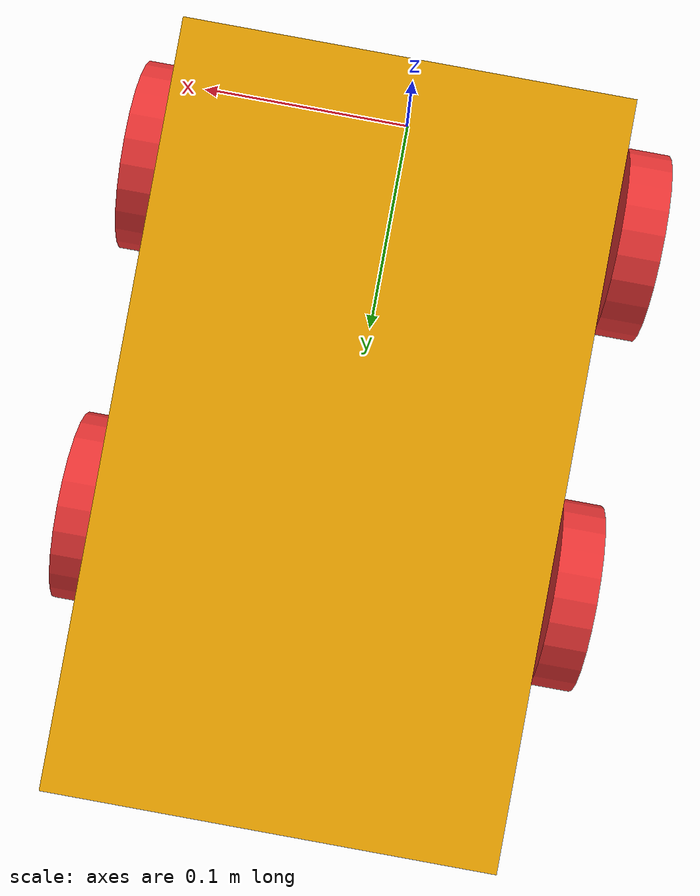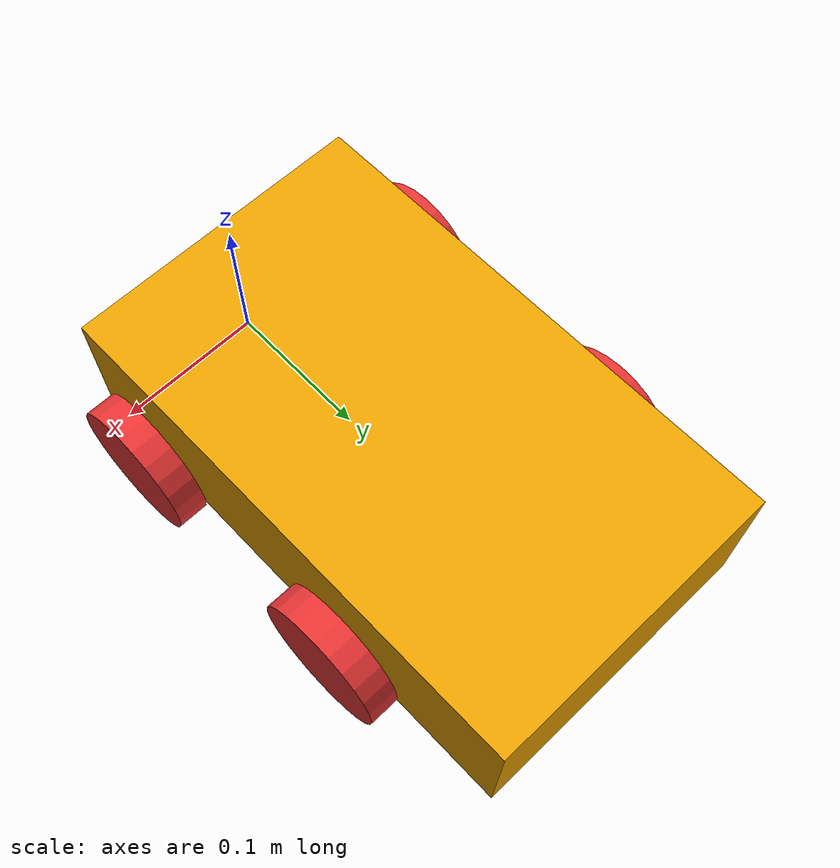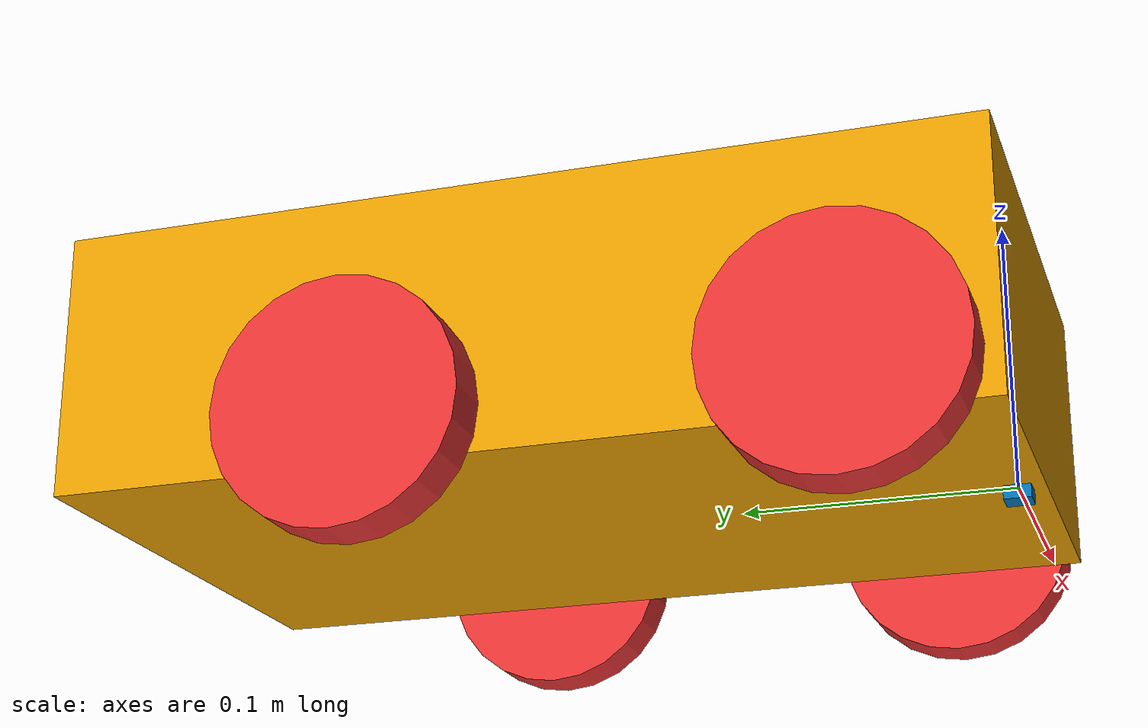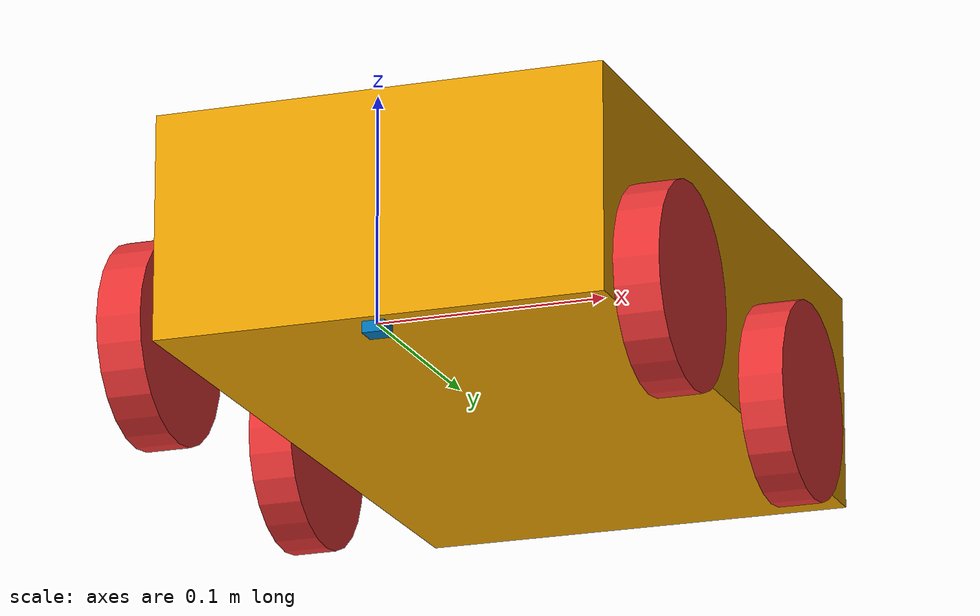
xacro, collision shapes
<?xml version="1.0"?>
<robot xmlns:xacro="http://www.ros.org/wiki/xacro" name="fs">

<!--    *Constants*    -->

<!-- These 2 values should always be modified in parallel with the ones in scripts/front_steer_akermann.py -->
<xacro:property name="axle_track" value="0.227" />
<xacro:property name="wheel_base" value="0.17" />

<xacro:property name="Chasis_mass" value="50" />
<xacro:property name="Wheel_mass" value="10" />
<xacro:property name="M_PI" value="3.1415926535897931" />

<!-- Camara focal length, in pixels. (This assumes square pixels) -->
<xacro:property name="Camera_pixel_focal_length" value="400" />
<xacro:property name="Camera_image_width" value="640" />
<xacro:property name="Camera_image_height" value="360" />
<xacro:property name="Camera_cx" value="320" />
<xacro:property name="Camera_cy" value="167" />
        <!--In degrees measured from vertical -->
<xacro:property name="Camera_angle" value="25" />
<!--Camera near and far cutoff -->
<xacro:property name="Camera_near_cut" value="0.05" />
<xacro:property name="Camera_far_cut" value="25" />

<xacro:property name="wheel_MU1" value="200.0" />
<xacro:property name="wheel_MU2" value="1.0" />

<!--    *Colours*   -->

<material name="grey">
    <color rgba="0.2 0.2 0.3 1"/>
</material>

<material name="blue">
    <color rgba="0 0 0.8 1"/>
</material>

<material name="white">
    <color rgba="1 1 1 1"/>
</material>

<material name="black">
    <color rgba="0 0 0 1"/>
</material>

<material name="green">
    <color rgba="0.0 0.8 0.0 1.0"/>
</material>

<material name="red">
    <color rgba="0.9 0.2 0.2 1"/>
</material>

<!--    Base link (chassis) since Gazebo 9 this has no mass of its own, see dummy link -->

  <link name="base_link">
    <collision>
        <origin rpy="0 0 0" xyz="0.003 0.16 0.05"/>
        <geometry>
            <box size="0.2 0.34 0.1"/>
        </geometry>
    </collision>
  </link>

<!-- Dummy node, inertia for base link (chasis+batterypack+Motors) -->

<joint name="dummy_joint" type="fixed">
  <axis xyz="0 0 0" />
  <origin xyz="0 0 0" rpy="0 0 0"/>
  <parent link="base_link"/>
  <child link="dummy_link"/>
</joint>

<link name="dummy_link">
    <inertial>
      <origin rpy="0 0 0" xyz="0.003 0.16 0.05"/>
      <mass value="${Chasis_mass}"/>
      <inertia ixx="${Chasis_mass*0.01}" ixy="0.0" ixz="0.0" iyy="${Chasis_mass*4.16e-3}" iyz="0.0" izz="${Chasis_mass*0.013}"/>
    </inertial>
</link>

<!--    *Rear Left Wheel*   -->

  <link name="rear_left_wheel">
    <visual>
      <origin rpy="0 1.57 0" xyz="-0.01 0 0"/>
        <geometry>
          <cylinder length="0.02" radius="0.045"/>
        </geometry>
        <material name="red"/>
      </visual>
      <collision>
        <origin rpy="0 1.57 0" xyz="-0.01 0 0"/>
        <geometry>
            <cylinder length="0.02" radius="0.045"/>
        </geometry>
      </collision>
    <inertial>
      <origin rpy="0 0 0" xyz="-0.01 0 0"/>
      <mass value="${Wheel_mass}"/>
      <inertia ixx="${Wheel_mass*8e-4}" ixy="0.0" ixz="0.0" iyy="${Wheel_mass*4.3e-4}" iyz="0.0" izz="${Wheel_mass*4.3e-4}"/>
    </inertial>
  </link>

  <gazebo reference="rear_left_wheel">
      <mu1 value="${wheel_MU1}"/>
      <mu2 value="${wheel_MU2}"/>
      <kp value="10000000.0" />
      <kd value="1.0" />
  </gazebo>

  <joint name="base_to_left_wheel" type="continuous">
    <limit effort="5000" velocity="10"/>
    <axis rpy="0 0 0" xyz="-1 0 0"/>
    <parent link="base_link"/>
    <child link="rear_left_wheel"/>
    <origin xyz="-0.105 0.040 0.01481" rpy="0 0 0" />
     <dynamics damping="0.3" friction="0.1"/>
  </joint>

  <transmission name="left_back_motor_trans">
    <type>transmission_interface/SimpleTransmission</type>
    <actuator name="left_back_motor_motor">
      <mechanicalReduction>1</mechanicalReduction>
    </actuator>
    <joint name="base_to_left_wheel">
      <hardwareInterface>hardware_interface/VelocityJointInterface</hardwareInterface>
    </joint>
  </transmission>

  <!--    *Rear Right Wheel*   -->

  <link name="rear_right_wheel">
    <visual>
      <origin rpy="0 1.57 0" xyz="0.01 0 0"/>
        <geometry>
          <cylinder length="0.02" radius="0.045"/>
        </geometry>
        <material name="red"/>
      </visual>
      <collision>
        <origin rpy="0 1.57 0" xyz="0.01 0 0"/>
        <geometry>
          <cylinder length="0.02" radius="0.045"/>
        </geometry>
      </collision>
    <inertial>
      <origin rpy="0 0 0" xyz="0.01 0 0"/>
      <mass value="${Wheel_mass}"/>
      <inertia ixx="${Wheel_mass*8e-4}" ixy="0.0" ixz="0.0" iyy="${Wheel_mass*4.3e-4}" iyz="0.0" izz="${Wheel_mass*4.3e-4}"/>
    </inertial>
  </link>

  <gazebo reference="rear_right_wheel">
      <mu1 value="${wheel_MU1}"/>
      <mu2 value="${wheel_MU2}"/>
      <kp value="10000000.0" />
      <kd value="1.0" />
  </gazebo>

  <joint name="base_to_right_wheel" type="continuous">
    <limit effort="5000" velocity="10"/>
    <axis rpy="0 0 0" xyz="-1 0 0"/>
    <parent link="base_link"/>
    <child link="rear_right_wheel"/>
    <origin xyz="0.105 0.040 0.01481" rpy="0 0 0" />
     <dynamics damping="0.3" friction="0.1"/>
  </joint>

  <transmission name="right_back_motor_trans">
    <type>transmission_interface/SimpleTransmission</type>
    <actuator name="right_back_motor_motor">
      <mechanicalReduction>1</mechanicalReduction>
    </actuator>
    <joint name="base_to_right_wheel">
      <hardwareInterface>hardware_interface/VelocityJointInterface</hardwareInterface>
    </joint>
  </transmission>

<!--    Left Steer mechanism   -->

<link name="steer_left">
    <visual>
        <origin rpy="0 0 0" xyz="0 0 0"/>
        <geometry>
            <cylinder length="0.02" radius="0.002"/>
        </geometry>
        <material name="green"/>
    </visual>
    <collision>
        <origin rpy="0 0 0" xyz="0 0 0"/>
        <geometry>
            <cylinder length="0.02" radius="0.002"/>
        </geometry>
    </collision>
  <inertial>
    <mass value="1" />
    <inertia ixx="1e-4" ixy="0.0" ixz="0.0" iyy="1e-4" iyz="0.0" izz="1e-4"/>
</inertial>
</link>

<joint name="base_to_left_front_steer" type="revolute">
    <axis xyz="0 0 1"/>
    <parent link="base_link"/>
    <child link="steer_left"/>
    <origin  xyz="-0.0825 0.210 0.020" rpy="0 0 0" />
    <dynamics damping="0.7" friction="0.7"/>
    <limit effort="5000" lower="${-45*M_PI/180}" upper="${45*M_PI/180}" velocity="${M_PI*2*10}"/>
</joint>

<transmission name="left_front_steer_trans">
  <type>transmission_interface/SimpleTransmission</type>
  <actuator name="left_front_steer_motor">
    <mechanicalReduction>1</mechanicalReduction>
  </actuator>
  <joint name="base_to_left_front_steer">
    <hardwareInterface>hardware_interface/PositionJointInterface</hardwareInterface>
  </joint>
</transmission>

<!--    Right Steer mechanism   -->

<link name="steer_right">
    <visual>
        <origin rpy="0 0 0" xyz="0 0 0"/>
        <geometry>
            <cylinder length="0.02" radius="0.002"/>
        </geometry>
        <material name="green"/>
    </visual>
    <collision>
        <origin rpy="0 0 0" xyz="0 0 0"/>
        <geometry>
            <cylinder length="0.02" radius="0.002"/>
        </geometry>
    </collision>
    <inertial>
      <mass value="1" />
      <inertia ixx="1e-4" ixy="0.0" ixz="0.0" iyy="1e-4" iyz="0.0" izz="1e-4"/>
  </inertial>
</link>

<joint name="base_to_right_front_steer" type="revolute">
    <axis xyz="0 0 1"/>
    <parent link="base_link"/>
    <child link="steer_right"/>
    <origin  xyz="0.0825 0.210 0.020" rpy="0 0 0" />
    <dynamics damping="0.7" friction="0.7"/>
    <limit effort="5000" lower="${-45*M_PI/180}" upper="${45*M_PI/180}" velocity="${M_PI*2*10}"/>
</joint>

<transmission name="right_front_steer_trans">
  <type>transmission_interface/SimpleTransmission</type>
  <actuator name="right_front_steer_motor">
    <mechanicalReduction>1</mechanicalReduction>
  </actuator>
  <joint name="base_to_right_front_steer">
    <hardwareInterface>hardware_interface/PositionJointInterface</hardwareInterface>
  </joint>
</transmission>

<!--  *Front Left Wheel*   -->

<link name="left_front_wheel">
    <visual>
      <origin rpy="0 1.57 0" xyz="-0.01 0 0"/>
      <geometry>
        <cylinder length="0.02" radius="0.045"/>
        </geometry>
        <material name="red"/>
    </visual>
    <collision>
        <origin rpy="0 1.57 0" xyz="-0.01 0 0"/>
        <geometry>
          <cylinder length="0.02" radius="0.045"/>
        </geometry>
      </collision>
  <inertial>
    <origin rpy="0 0 0" xyz="-0.01 0 0"/>
    <mass value="${Wheel_mass}"/>
    <inertia ixx="${Wheel_mass*8e-4}" ixy="0.0" ixz="0.0" iyy="${Wheel_mass*4.3e-4}" iyz="0.0" izz="${Wheel_mass*4.3e-4}"/>
  </inertial>
</link>

<gazebo reference="left_front_wheel">
    <mu1 value="${wheel_MU1}"/>
    <mu2 value="${wheel_MU2}"/>
    <kp value="10000000.0" />
    <kd value="1.0" />
</gazebo>

<joint name="base_to_left_front_wheel" type="continuous">
  <axis  effort="1000.0" rpy="0 0 0" xyz="-1 0 0"/>
  <parent link="steer_left"/>
  <child link="left_front_wheel"/>
  <origin xyz="-0.022 0 -0.006" rpy="0 0 0" />
   <dynamics damping="0.3" friction="0.1"/>
</joint>

<transmission name="left_front_wheel_trans">
  <type>transmission_interface/SimpleTransmission</type>
  <actuator name="left_front_wheel_motor">
    <mechanicalReduction>1</mechanicalReduction>
  </actuator>
  <joint name="base_to_left_front_wheel">
    <hardwareInterface>hardware_interface/EffortJointInterface</hardwareInterface>
  </joint>
</transmission>

<!--  *Front Right Wheel*   -->

<link name="right_front_wheel">
    <visual>
      <origin rpy="0 1.57 0" xyz="0.01 0 0"/>
        <geometry>
          <cylinder length="0.02" radius="0.045"/>
        </geometry>
        <material name="red"/>
    </visual>
    <collision>
        <origin rpy="0 1.57 0" xyz="0.01 0 0"/>
        <geometry>
          <cylinder length="0.02" radius="0.045"/>
        </geometry>
      </collision>
    <inertial>
      <origin rpy="0 0 0" xyz="0.01 0 0"/>
      <mass value="${Wheel_mass}"/>
      <inertia ixx="${Wheel_mass*8e-4}" ixy="0.0" ixz="0.0" iyy="${Wheel_mass*4.3e-4}" iyz="0.0" izz="${Wheel_mass*4.3e-4}"/>
    </inertial>
  </link>

  <gazebo reference="right_front_wheel">
      <mu1 value="${wheel_MU1}"/>
      <mu2 value="${wheel_MU2}"/>
      <kp value="10000000.0" />
      <kd value="1.0" />
  </gazebo>

  <joint name="base_to_right_front_wheel" type="continuous">
    <axis  effort="1000.0" rpy="0 0 0" xyz="-1 0 0"/>
    <parent link="steer_right"/>
    <child link="right_front_wheel"/>
    <origin xyz="0.022 0 -0.006" rpy="0 0 0" />
     <dynamics damping="0.3" friction="0.1"/>
  </joint>

  <transmission name="right_front_wheel_trans">
    <type>transmission_interface/SimpleTransmission</type>
    <actuator name="right_front_wheel_motor">
      <mechanicalReduction>1</mechanicalReduction>
    </actuator>
    <joint name="base_to_right_front_wheel">
      <hardwareInterface>hardware_interface/EffortJointInterface</hardwareInterface>
    </joint>
  </transmission>

<!--    *Sensors*  -->

<!--    Camera 2d  -->

<joint name="camera_joint" type="fixed">
  <origin xyz="0 0.2745 0.125" rpy="0 ${Camera_angle*M_PI/180} ${M_PI/2}" />
  <parent link="base_link"/>
  <child link="camera_link"/>
</joint>

<link name="camera_link">
    <visual>
        <origin rpy="0 0 0" xyz="0 0 0"/>
        <geometry>
            <mesh filename="package://fs_simulator/meshes/prototype_stl/camera_test.stl" scale="0.001 0.001 0.001"/>
        </geometry>
        <material name="blue"/>
    </visual>

  <inertial>
    <mass value="1e-5" />
    <origin xyz="0 0 0" rpy="0 0 0"/>
    <inertia ixx="1e-6" ixy="0" ixz="0" iyy="1e-6" iyz="0" izz="1e-6" />
  </inertial>
</link>

  <gazebo reference="camera_link">
    <material>Gazebo/DarkGrey</material>
    <sensor type="camera" name="camera2d_1">
      <update_rate>10.0</update_rate>
      <camera name="head">
        <horizontal_fov> ${2*atan(0.5*Camera_image_width/Camera_pixel_focal_length)}</horizontal_fov>
        <image>
          <width>${Camera_image_width}</width>
          <height>${Camera_image_height}</height>
          <format>R8G8B8</format>
        </image>
        <clip>
          <near>${Camera_near_cut}</near>
          <far>${Camera_far_cut}</far>
        </clip>
        <noise>
          <type>gaussian</type>
          <!-- Noise is sampled independently per pixel on each frame.
               That pixel's noise value is added to each of its color
               channels, which at that point lie in the range [0,1]. -->
          <mean>0.0</mean>
          <stddev>0.01653004441291028</stddev>
        </noise>
        <lens>
          <type>gnomonical</type>
          <intrinsics>
            <fx> ${Camera_pixel_focal_length} </fx>  <!-- X focal length in pixels -->
            <fy> ${Camera_pixel_focal_length} </fy>  <!-- Y focal length in pixels -->
            <cx> ${Camera_cx} </cx>  <!-- X principal point in pixels -->
            <cy> ${Camera_cy} </cy>  <!-- Y principal point in pixels -->
          </intrinsics>
        </lens>
      </camera>
      <plugin name="camera_controller" filename="libgazebo_ros_camera.so">
        <alwaysOn>true</alwaysOn>
        <updateRate>0.0</updateRate>
        <cameraName>fs/c1</cameraName>
        <imageTopicName>image_raw</imageTopicName>
        <cameraInfoTopicName>camera_info</cameraInfoTopicName>
        <frameName>camera_link</frameName>
        <Cx>${Camera_cx}</Cx>
        <Cy>${Camera_cy}</Cy>
      </plugin>
    </sensor>
  </gazebo>

<!--    Camera 3d  -->
<joint name="camera3d_frame_joint" type="fixed">
  <origin xyz="0 0.2745 0.125" rpy="-${(M_PI/2)+(Camera_angle*M_PI/180)} 0 0"/>
  <parent link="base_link"/>
  <child link="camera3d_frame_link"/>
</joint>

<link name="camera3d_frame_link">
</link>

<joint name="camera3d_joint" type="fixed">
  <origin xyz="0 0.2745 0.125" rpy="0 ${Camera_angle*M_PI/180} ${M_PI/2}" />
  <parent link="base_link"/>
  <child link="camera3d_link"/>
</joint>

<link name="camera3d_link">
  <inertial>
    <mass value="1e-5" />
    <origin xyz="0 0 0" rpy="0 0 0"/>
    <inertia ixx="1e-6" ixy="0" ixz="0" iyy="1e-6" iyz="0" izz="1e-6" />
  </inertial>
</link>

  <gazebo reference="camera3d_link">
    <material>Gazebo/DarkGrey</material>
    <sensor type="depth" name="camera3d_1">
      <update_rate>10.0</update_rate>
      <camera name="head">
        <horizontal_fov> ${2*atan(0.5*Camera_image_width/Camera_pixel_focal_length)} </horizontal_fov>
        <image>
          <width>${Camera_image_width}</width>
          <height>${Camera_image_height}</height>
          <format>R8G8B8</format>
        </image>
        <clip>
          <near>${Camera_near_cut}</near>
          <far>${Camera_far_cut}</far>
        </clip>
        <lens>
          <type>gnomonical</type>
          <intrinsics>
            <fx> ${Camera_pixel_focal_length} </fx>  <!-- X focal length in pixels -->
            <fy> ${Camera_pixel_focal_length} </fy>  <!-- Y focal length in pixels -->
            <cx> ${Camera_cx} </cx>  <!-- X principal point in pixels -->
            <cy> ${Camera_cy} </cy>  <!-- Y principal point in pixels -->
          </intrinsics>
        </lens>
      </camera>
        <plugin name="camera_plugin" filename="libgazebo_ros_openni_kinect.so">
          <baseline>0.2</baseline>
          <alwaysOn>true</alwaysOn>
          <updateRate>0.0</updateRate>
          <cameraName>camera_ir</cameraName>
          <imageTopicName>/camera/color/image_raw</imageTopicName>
          <cameraInfoTopicName>/camera/color/camera_info</cameraInfoTopicName>
          <depthImageTopicName>/camera/depth/image_raw</depthImageTopicName>
          <depthImageCameraInfoTopicName>/camera/depth/camera_info</depthImageCameraInfoTopicName>
          <pointCloudTopicName>/camera/depth/points</pointCloudTopicName>
          <frameName>camera3d_frame_link</frameName>
          <pointCloudCutoff>${Camera_near_cut}</pointCloudCutoff>
          <pointCloudCutoffMax>${Camera_far_cut}</pointCloudCutoffMax>
          <hackBaseline>0</hackBaseline>
          <Cx>${Camera_cx}</Cx>
          <Cy>${Camera_cy}</Cy>
        </plugin>
    </sensor>
  </gazebo>

<!--    LiDar Hokuyo   -->

<joint name="hokuyo_joint" type="fixed">
  <axis xyz="0 1 0" />
  <origin xyz="0 0.300 0.045" rpy="0 0 1.5708" />
  <parent link="base_link"/>
  <child link="hokuyo_link"/>
</joint>

<link name="hokuyo_link">
    <inertial>
        <mass value="1e-5" />
        <origin xyz="0 0 0" rpy="0 0 0"/>
        <inertia ixx="1e-6" ixy="0" ixz="0" iyy="1e-6" iyz="0" izz="1e-6" />
    </inertial>
</link>

  <gazebo reference="hokuyo_link">
    <sensor type="ray" name="head_hokuyo_sensor">
      <pose>0 0 0 0 0 0</pose>
      <visualize>false</visualize>
      <update_rate>20</update_rate>
      <ray>
        <scan>
          <horizontal>
            <samples>720</samples>
            <resolution>1</resolution>
            <min_angle>-1.570796</min_angle>
            <max_angle>1.570796</max_angle>
          </horizontal>
        </scan>
        <range>
          <min>0.1</min>
          <max>30.0</max>
          <resolution>0.01</resolution>
        </range>
        <noise>
          <type>gaussian</type>
          <mean>0.0</mean>
          <stddev>0.01653004441291028</stddev>
        </noise>
      </ray>
      <plugin name="gazebo_ros_head_hokuyo_controller" filename="libgazebo_ros_laser.so">
        <topicName>/fs/laser/scan</topicName>
        <frameName>hokuyo_link</frameName>
      </plugin>
    </sensor>
  </gazebo>

<!--    IMU   -->

<joint name="IMU_joint" type="fixed">
  <axis xyz="1 0 0"/>
  <origin xyz="0 0 0"/>
  <parent link="base_link"/>
  <child link="IMU_link"/>
</joint>

<link name="IMU_link">
<inertial>
  <mass value="0.05"/>
  <origin rpy="0 0 0" xyz="0 0 0"/>
  <inertia ixx="0.00001" ixy="0" ixz="0" iyy="0.00001" iyz="0" izz="0.00001"/>
</inertial>
<visual>
  <origin rpy="0 0 0" xyz="0 0 0"/>
  <geometry>
    <box size="0.01 0.01 0.01"/>
  </geometry>
</visual>
<collision>
  <origin rpy="0 0 0" xyz="0 0 0"/>
  <geometry>
    <box size="0.01 0.01 0.01"/>
  </geometry>
</collision>
</link>

<gazebo>
  <plugin name="imu_plugin" filename="libgazebo_ros_imu.so">
    <alwaysOn>true</alwaysOn>
    <bodyName>IMU_link</bodyName>
    <topicName>fs/imu_data</topicName>
    <serviceName>imu_service</serviceName>
    <gaussianNoise>8.0e-03</gaussianNoise>
    <updateRate>50.0</updateRate>
  </plugin>
</gazebo>

<!--    Gazebo Plugin  -->

    <gazebo>
      <plugin name="gazebo_ros_control" filename="libgazebo_ros_control.so">
        <robotNamespace>/</robotNamespace>
        <legacyModeNS>true</legacyModeNS>
      </plugin>
    </gazebo>
</robot>
